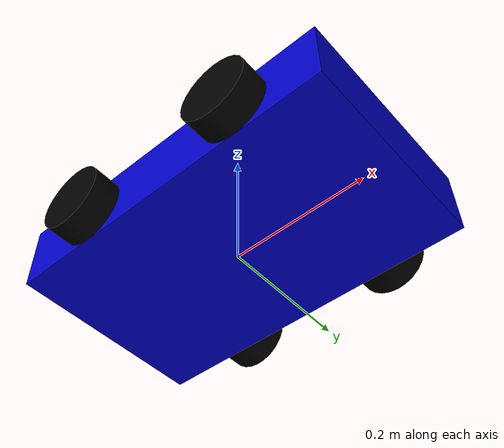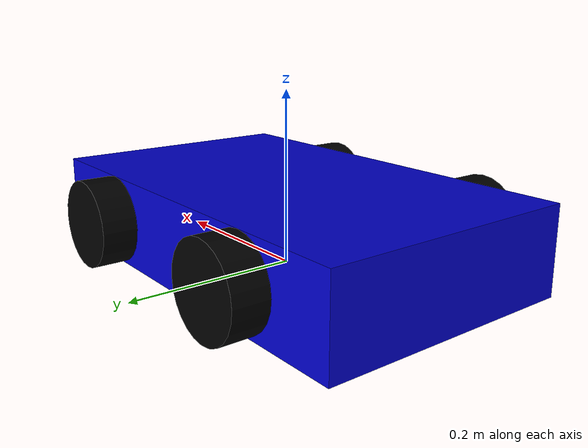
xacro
<?xml version="1.0"?>
<robot name="my_car" xmlns:xacro="http://www.ros.org/wiki/xacro">

  <!-- Properties -->
  <xacro:property name="chassis_length" value="0.5"/>
  <xacro:property name="chassis_width" value="0.3"/>
  <xacro:property name="chassis_height" value="0.1"/>
  <xacro:property name="wheel_radius" value="0.05"/>
  <xacro:property name="wheel_width" value="0.04"/>
  <xacro:property name="wheel_mass" value="0.5"/>
  <xacro:property name="chassis_mass" value="5.0"/>

  <!-- Chassis -->
  <link name="base_link">
    <inertial>
      <mass value="${chassis_mass}"/>
      <origin xyz="0 0 ${chassis_height/2}" rpy="0 0 0"/>
      <inertia ixx="${chassis_mass/12 * (chassis_width*chassis_width + chassis_height*chassis_height)}"
               ixy="0" ixz="0"
               iyy="${chassis_mass/12 * (chassis_length*chassis_length + chassis_height*chassis_height)}"
               iyz="0"
               izz="${chassis_mass/12 * (chassis_length*chassis_length + chassis_width*chassis_width)}"/>
    </inertial>
    <collision>
      <origin xyz="0 0 ${chassis_height/2}" rpy="0 0 0"/>
      <geometry>
        <box size="${chassis_length} ${chassis_width} ${chassis_height}"/>
      </geometry>
    </collision>
    <visual>
      <origin xyz="0 0 ${chassis_height/2}" rpy="0 0 0"/>
      <geometry>
        <box size="${chassis_length} ${chassis_width} ${chassis_height}"/>
      </geometry>
      <material name="blue">
        <color rgba="0 0 0.8 1"/>
      </material>
    </visual>
  </link>

  <!-- Gazebo material -->
  <gazebo reference="base_link">
    <material>Gazebo/Blue</material>
  </gazebo>

  <!-- Wheel Macro -->
  <xacro:macro name="wheel" params="name x y z">
    <link name="${name}_wheel">
      <inertial>
        <mass value="${wheel_mass}"/>
        <origin xyz="0 0 0" rpy="${pi/2} 0 0"/>
        <inertia ixx="${wheel_mass * (3*wheel_radius*wheel_radius + wheel_width*wheel_width)/12}"
                 ixy="0" ixz="0"
                 iyy="${wheel_mass * (3*wheel_radius*wheel_radius + wheel_width*wheel_width)/12}"
                 iyz="0"
                 izz="${wheel_mass * wheel_radius*wheel_radius/2}"/>
      </inertial>
      <collision>
        <origin xyz="0 0 0" rpy="${pi/2} 0 0"/>
        <geometry>
          <cylinder radius="${wheel_radius}" length="${wheel_width}"/>
        </geometry>
      </collision>
      <visual>
        <origin xyz="0 0 0" rpy="${pi/2} 0 0"/>
        <geometry>
          <cylinder radius="${wheel_radius}" length="${wheel_width}"/>
        </geometry>
        <material name="black">
          <color rgba="0 0 0 1"/>
        </material>
      </visual>
    </link>

    <gazebo reference="${name}_wheel">
      <material>Gazebo/Black</material>
    </gazebo>

    <joint name="${name}_wheel_joint" type="continuous">
      <parent link="base_link"/>
      <child link="${name}_wheel"/>
      <origin xyz="${x} ${y} ${z}" rpy="0 0 0"/>
      <axis xyz="0 1 0"/>
      <dynamics damping="0.1" friction="0.1"/>
    </joint>
  </xacro:macro>

  <!-- Create wheels -->
  <xacro:wheel name="front_left" x="${chassis_length/4}" y="${chassis_width/2 + wheel_width/2}" z="${wheel_radius}"/>
  <xacro:wheel name="front_right" x="${chassis_length/4}" y="-${chassis_width/2 + wheel_width/2}" z="${wheel_radius}"/>
  <xacro:wheel name="rear_left" x="-${chassis_length/4}" y="${chassis_width/2 + wheel_width/2}" z="${wheel_radius}"/>
  <xacro:wheel name="rear_right" x="-${chassis_length/4}" y="-${chassis_width/2 + wheel_width/2}" z="${wheel_radius}"/>

  <!-- Add Gazebo plugin for SimulatedDifferentialDrive -->
  <gazebo>
    <plugin name="differential_drive_controller" filename="libgazebo_ros_diff_drive.so">
      <legacyMode>false</legacyMode>
      <alwaysOn>true</alwaysOn>
      <updateRate>20</updateRate>
      <leftJoint>front_left_wheel_joint</leftJoint>
      <rightJoint>front_right_wheel_joint</rightJoint>
      <wheelSeparation>${chassis_width + wheel_width}</wheelSeparation>
      <wheelDiameter>${2*wheel_radius}</wheelDiameter>
      <torque>50</torque>
      <commandTopic>cmd_vel</commandTopic>
      <odometryTopic>odom</odometryTopic>
      <odometryFrame>odom</odometryFrame>
      <robotBaseFrame>base_link</robotBaseFrame>
    </plugin>
  </gazebo>

</robot>
